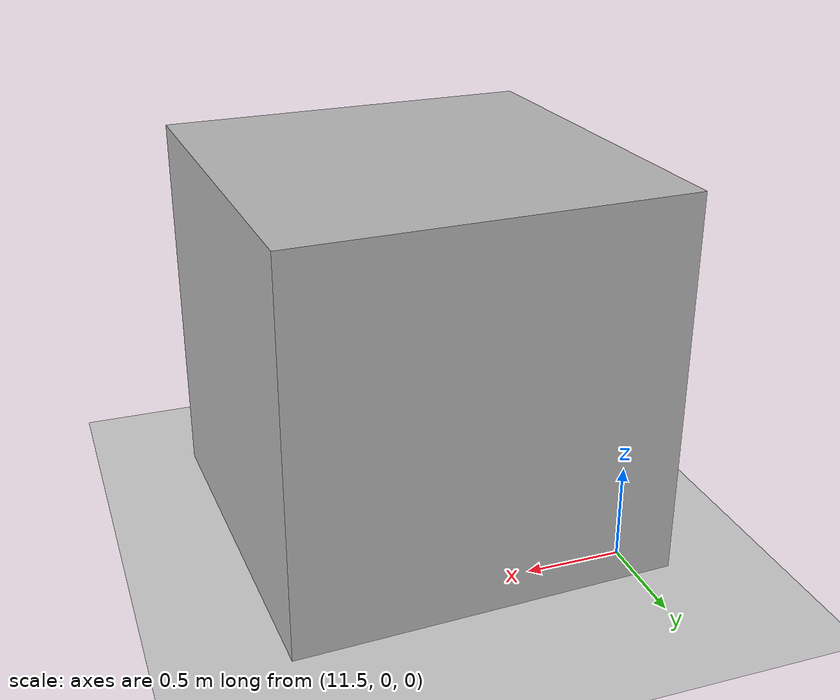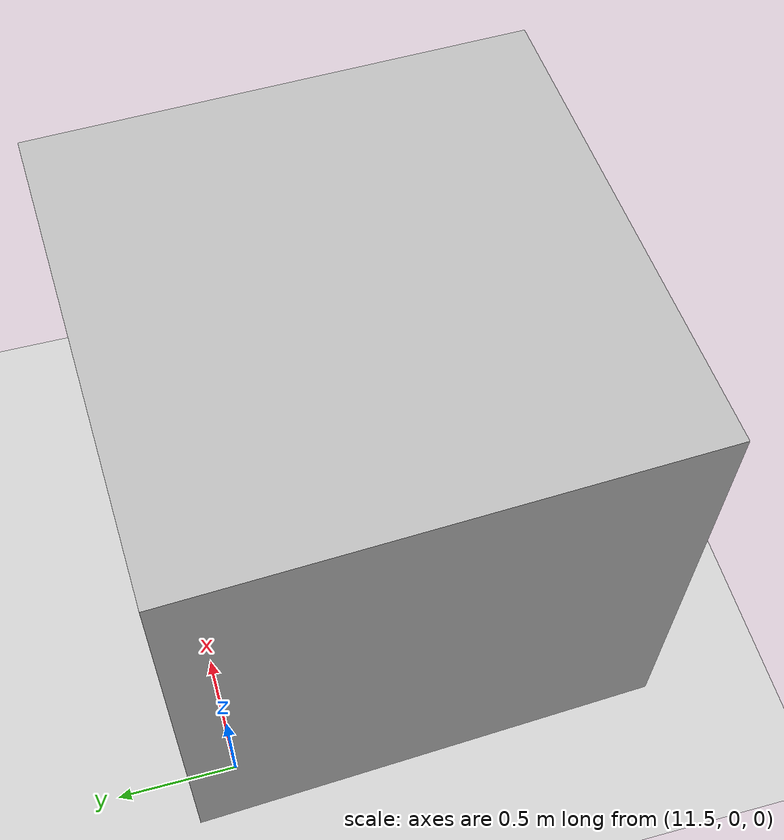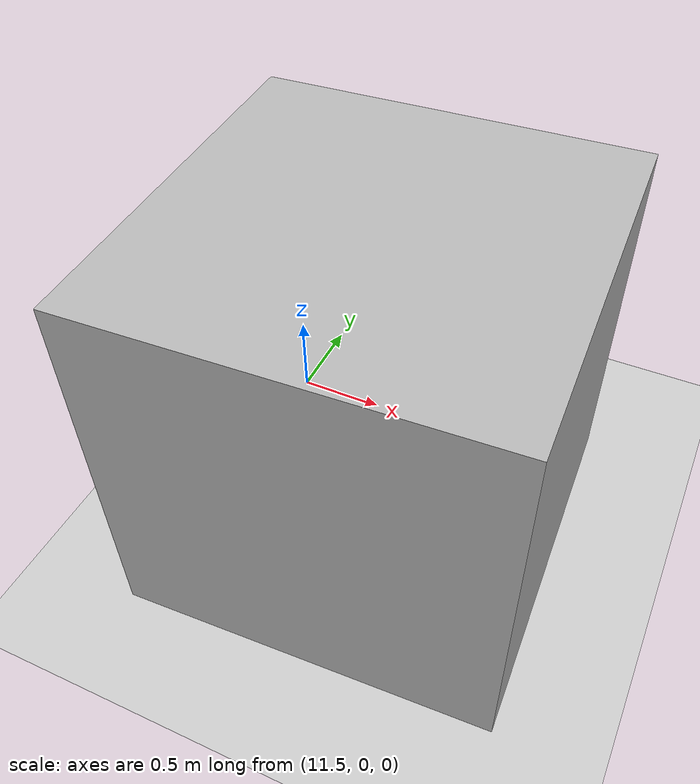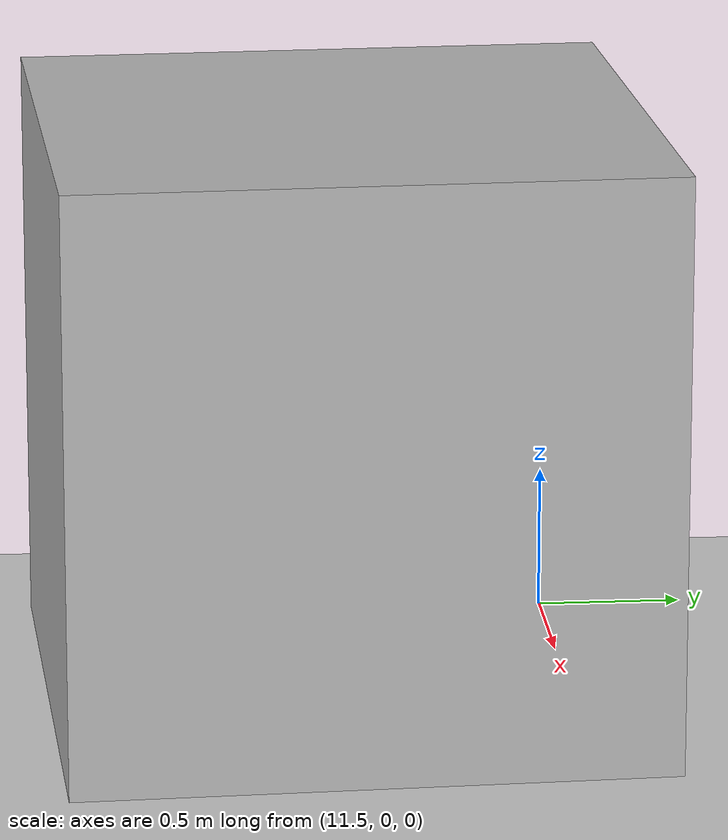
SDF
<sdf version='1.9'>
  <world name='empty'>
    <physics name='1ms' type='ignored'>
      <max_step_size>0.001</max_step_size>
      <real_time_factor>1</real_time_factor>
      <real_time_update_rate>1000</real_time_update_rate>
    </physics>
    <spherical_coordinates>
        <surface_model>EARTH_WGS84</surface_model>
        <world_frame_orientation>ENU</world_frame_orientation>
        <latitude_deg>47.478950</latitude_deg>
        <longitude_deg>19.057785</longitude_deg>
        <elevation>0</elevation>
        <heading_deg>0</heading_deg>
    </spherical_coordinates>
    <plugin name='gz::sim::systems::Physics' filename='ignition-gazebo-physics-system'/>
    <plugin name='gz::sim::systems::UserCommands' filename='ignition-gazebo-user-commands-system'/>
    <plugin name='gz::sim::systems::SceneBroadcaster' filename='ignition-gazebo-scene-broadcaster-system'/>
    <plugin name='gz::sim::systems::Contact' filename='ignition-gazebo-contact-system'/>
    <gravity>0 0 -9.8</gravity>
    <magnetic_field>6e-06 2.3e-05 -4.2e-05</magnetic_field>
    <atmosphere type='adiabatic'/>
    <scene>
      <ambient>0.4 0.4 0.4 1</ambient>
      <background>0.7 0.7 0.7 1</background>
      <shadows>true</shadows>
    </scene>
    <model name='ground_plane'>
      <static>true</static>
      <link name='link'>
        <collision name='collision'>
          <geometry>
            <plane>
              <normal>0 0 1</normal>
              <size>100 100</size>
            </plane>
          </geometry>
          <surface>
            <friction>
              <ode/>
            </friction>
            <bounce/>
            <contact/>
          </surface>
        </collision>
        <visual name='visual'>
          <geometry>
            <plane>
              <normal>0 0 1</normal>
              <size>100 100</size>
            </plane>
          </geometry>
          <material>
            <ambient>0.8 0.8 0.8 1</ambient>
            <diffuse>0.8 0.8 0.8 1</diffuse>
            <specular>0.8 0.8 0.8 1</specular>
          </material>
        </visual>
        <pose>0 0 0 0 -0 0</pose>
        <inertial>
          <pose>0 0 0 0 -0 0</pose>
          <mass>1</mass>
          <inertia>
            <ixx>1</ixx>
            <ixy>0</ixy>
            <ixz>0</ixz>
            <iyy>1</iyy>
            <iyz>0</iyz>
            <izz>1</izz>
          </inertia>
        </inertial>
        <enable_wind>false</enable_wind>
      </link>
      <pose>0 0 0 0 -0 0</pose>
      <self_collide>false</self_collide>
    </model>
    <model name='april'>
      <link name='link'>
        <visual name='visual'>
          <geometry>
            <mesh>
              <uri>file:///home/shaurya/april_tag/april.obj</uri>
            </mesh>
          </geometry>
        </visual>
        <collision name='collision'>
          <geometry>
            <mesh>
              <uri>file:///home/shaurya/april_tag/april.obj</uri>
            </mesh>
          </geometry>
        </collision>
        <pose>0 0 0 0 -0 0</pose>
        <inertial>
          <pose>0 0 0 0 -0 0</pose>
          <mass>1</mass>
          <inertia>
            <ixx>1</ixx>
            <ixy>0</ixy>
            <ixz>0</ixz>
            <iyy>1</iyy>
            <iyz>0</iyz>
            <izz>1</izz>
          </inertia>
        </inertial>
        <enable_wind>false</enable_wind>
      </link>
      <pose>12.3486 -0.765849 1 1.5708 -0 -3.09932</pose>
      <static>false</static>
      <self_collide>false</self_collide>
    </model>
    <light name='sun' type='directional'>
      <pose>0 0 10 0 -0 0</pose>
      <cast_shadows>true</cast_shadows>
      <intensity>1</intensity>
      <direction>0.5 0 -0.1</direction>
      <diffuse>0.8 0.8 0.8 1</diffuse>
      <specular>0.2 0.2 0.2 1</specular>
      <attenuation>
        <range>1000</range>
        <linear>0.01</linear>
        <constant>0.90000000000000002</constant>
        <quadratic>0.001</quadratic>
      </attenuation>
      <spot>
        <inner_angle>0</inner_angle>
        <outer_angle>0</outer_angle>
        <falloff>0</falloff>
      </spot>
    </light>
  </world>
</sdf>
